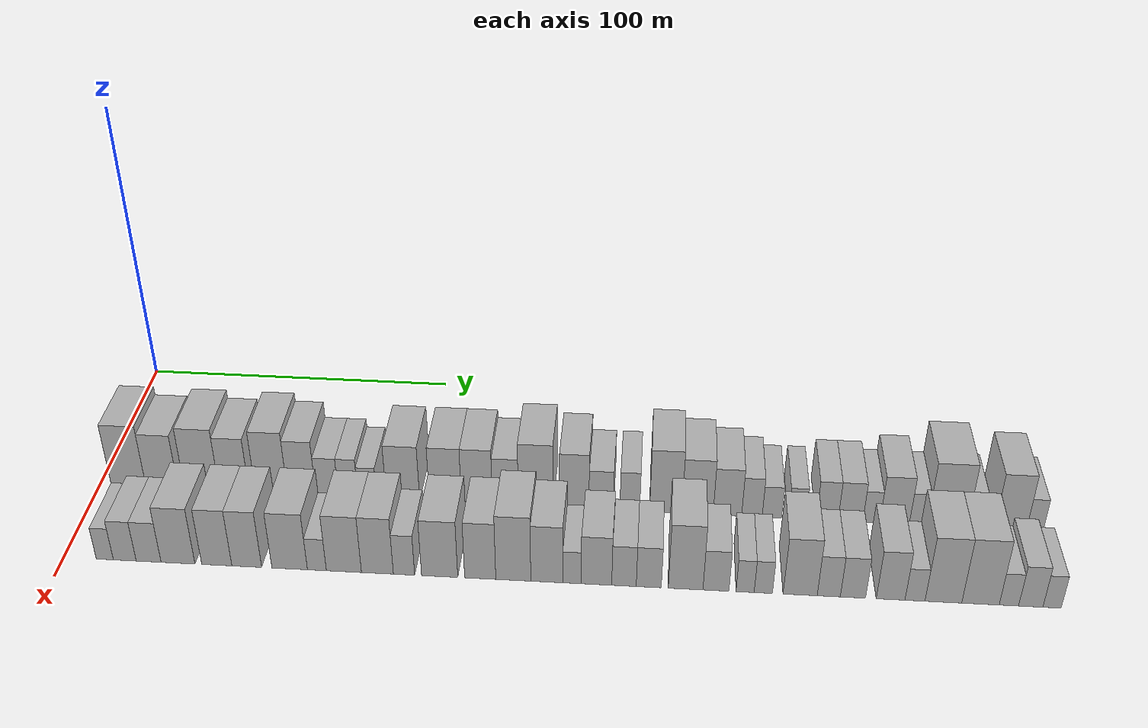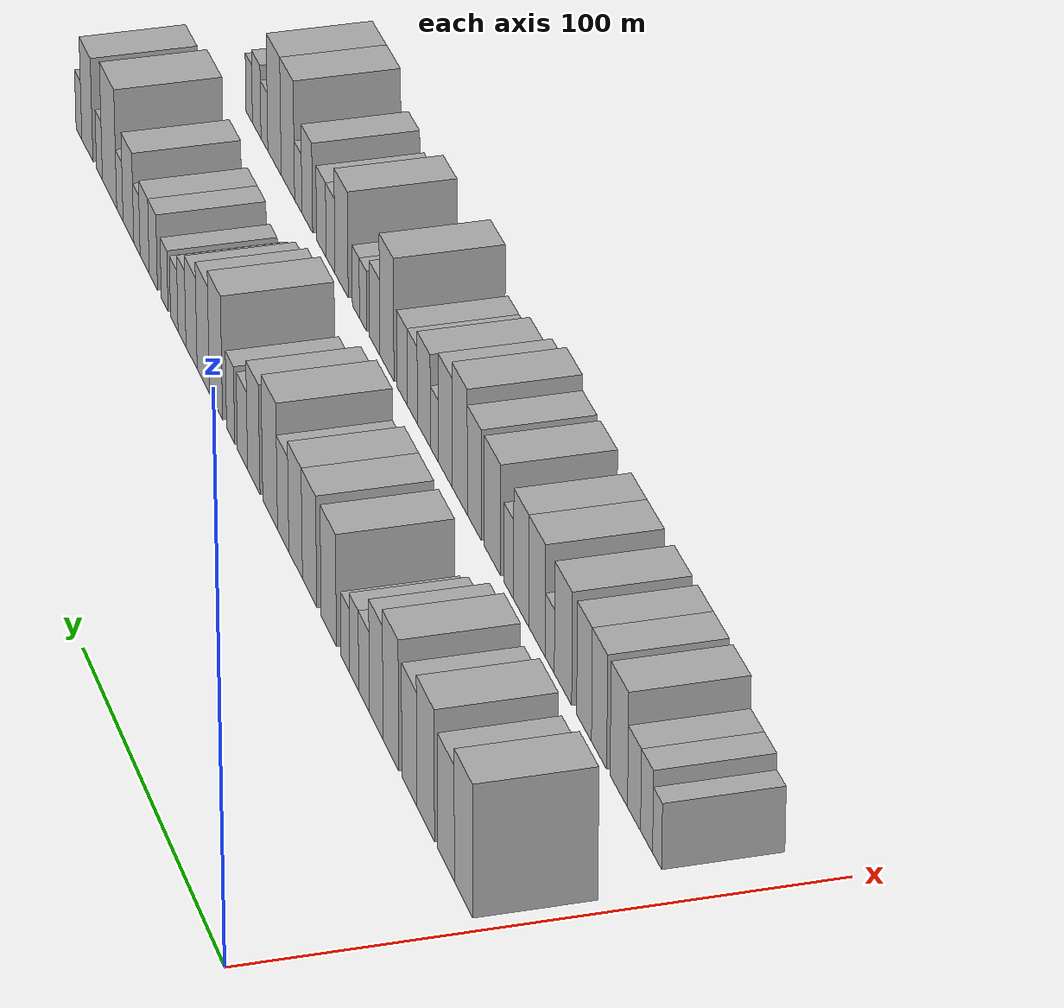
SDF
<sdf version="1.6">
 <world name="default">
  <model name="building_32">
   <static>1</static>
   <pose>50.0000 9.2240 0 0.000000 0.000000 0.000000</pose>
   <link name="link">
    <pose>0 0 12.00 0 0 0</pose>
    <collision name="collision"><geometry><box><size>20.0000 10.9616 24.0000</size></box></geometry></collision>
    <visual name="visual">
     <cast_shadows>0</cast_shadows>
     <geometry><box><size>20.0000 10.9616 24.0000</size></box></geometry>
     <material>
      <script>
       <uri>model://HANNAS_wall/materials/scripts</uri>
       <uri>model://HANNAS_wall/materials/textures</uri>
       <name>vrc/HANNAS_wall</name>
      </script>
     </material>
    </visual>
   </link>
  </model>
  <model name="building_33">
   <static>1</static>
   <pose>50.0000 19.7706 0 0.000000 0.000000 0.000000</pose>
   <link name="link">
    <pose>0 0 10.50 0 0 0</pose>
    <collision name="collision"><geometry><box><size>20.0000 10.1318 21.0000</size></box></geometry></collision>
    <visual name="visual">
     <cast_shadows>0</cast_shadows>
     <geometry><box><size>20.0000 10.1318 21.0000</size></box></geometry>
     <material>
      <script>
       <uri>model://HANNAS_wall/materials/scripts</uri>
       <uri>model://HANNAS_wall/materials/textures</uri>
       <name>vrc/HANNAS_wall</name>
      </script>
     </material>
    </visual>
   </link>
  </model>
  <model name="building_34">
   <static>1</static>
   <pose>50.0000 32.3000 0 0.000000 0.000000 0.000000</pose>
   <link name="link">
    <pose>0 0 12.00 0 0 0</pose>
    <collision name="collision"><geometry><box><size>20.0000 10.9269 24.0000</size></box></geometry></collision>
    <visual name="visual">
     <cast_shadows>0</cast_shadows>
     <geometry><box><size>20.0000 10.9269 24.0000</size></box></geometry>
     <material>
      <script>
       <uri>model://HANNAS_wall/materials/scripts</uri>
       <uri>model://HANNAS_wall/materials/textures</uri>
       <name>vrc/HANNAS_wall</name>
      </script>
     </material>
    </visual>
   </link>
  </model>
  <model name="building_35">
   <static>1</static>
   <pose>50.0000 42.4426 0 0.000000 0.000000 0.000000</pose>
   <link name="link">
    <pose>0 0 10.50 0 0 0</pose>
    <collision name="collision"><geometry><box><size>20.0000 9.3583 21.0000</size></box></geometry></collision>
    <visual name="visual">
     <cast_shadows>0</cast_shadows>
     <geometry><box><size>20.0000 9.3583 21.0000</size></box></geometry>
     <material>
      <script>
       <uri>model://HANNAS_wall/materials/scripts</uri>
       <uri>model://HANNAS_wall/materials/textures</uri>
       <name>vrc/HANNAS_wall</name>
      </script>
     </material>
    </visual>
   </link>
  </model>
  <model name="building_36">
   <static>1</static>
   <pose>50.0000 54.1233 0 0.000000 0.000000 0.000000</pose>
   <link name="link">
    <pose>0 0 12.00 0 0 0</pose>
    <collision name="collision"><geometry><box><size>20.0000 10.0030 24.0000</size></box></geometry></collision>
    <visual name="visual">
     <cast_shadows>0</cast_shadows>
     <geometry><box><size>20.0000 10.0030 24.0000</size></box></geometry>
     <material>
      <script>
       <uri>model://HANNAS_wall/materials/scripts</uri>
       <uri>model://HANNAS_wall/materials/textures</uri>
       <name>vrc/HANNAS_wall</name>
      </script>
     </material>
    </visual>
   </link>
  </model>
  <model name="building_37">
   <static>1</static>
   <pose>50.0000 63.5357 0 0.000000 0.000000 0.000000</pose>
   <link name="link">
    <pose>0 0 10.50 0 0 0</pose>
    <collision name="collision"><geometry><box><size>20.0000 8.8218 21.0000</size></box></geometry></collision>
    <visual name="visual">
     <cast_shadows>0</cast_shadows>
     <geometry><box><size>20.0000 8.8218 21.0000</size></box></geometry>
     <material>
      <script>
       <uri>model://HANNAS_wall/materials/scripts</uri>
       <uri>model://HANNAS_wall/materials/textures</uri>
       <name>vrc/HANNAS_wall</name>
      </script>
     </material>
    </visual>
   </link>
  </model>
  <model name="building_38">
   <static>1</static>
   <pose>50.0000 71.4498 0 0.000000 0.000000 0.000000</pose>
   <link name="link">
    <pose>0 0 7.50 0 0 0</pose>
    <collision name="collision"><geometry><box><size>20.0000 7.0064 15.0000</size></box></geometry></collision>
    <visual name="visual">
     <cast_shadows>0</cast_shadows>
     <geometry><box><size>20.0000 7.0064 15.0000</size></box></geometry>
     <material>
      <script>
       <uri>model://HANNAS_wall/materials/scripts</uri>
       <uri>model://HANNAS_wall/materials/textures</uri>
       <name>vrc/HANNAS_wall</name>
      </script>
     </material>
    </visual>
   </link>
  </model>
  <model name="building_39">
   <static>1</static>
   <pose>50.0000 77.9659 0 0.000000 0.000000 0.000000</pose>
   <link name="link">
    <pose>0 0 7.50 0 0 0</pose>
    <collision name="collision"><geometry><box><size>20.0000 6.0259 15.0000</size></box></geometry></collision>
    <visual name="visual">
     <cast_shadows>0</cast_shadows>
     <geometry><box><size>20.0000 6.0259 15.0000</size></box></geometry>
     <material>
      <script>
       <uri>model://HANNAS_wall/materials/scripts</uri>
       <uri>model://HANNAS_wall/materials/textures</uri>
       <name>vrc/HANNAS_wall</name>
      </script>
     </material>
    </visual>
   </link>
  </model>
  <model name="building_40">
   <static>1</static>
   <pose>50.0000 83.8761 0 0.000000 0.000000 0.000000</pose>
   <link name="link">
    <pose>0 0 6.00 0 0 0</pose>
    <collision name="collision"><geometry><box><size>20.0000 5.7946 12.0000</size></box></geometry></collision>
    <visual name="visual">
     <cast_shadows>0</cast_shadows>
     <geometry><box><size>20.0000 5.7946 12.0000</size></box></geometry>
     <material>
      <script>
       <uri>model://HANNAS_wall/materials/scripts</uri>
       <uri>model://HANNAS_wall/materials/textures</uri>
       <name>vrc/HANNAS_wall</name>
      </script>
     </material>
    </visual>
   </link>
  </model>
  <model name="building_41">
   <static>1</static>
   <pose>50.0000 94.9250 0 0.000000 0.000000 0.000000</pose>
   <link name="link">
    <pose>0 0 10.50 0 0 0</pose>
    <collision name="collision"><geometry><box><size>20.0000 10.3031 21.0000</size></box></geometry></collision>
    <visual name="visual">
     <cast_shadows>0</cast_shadows>
     <geometry><box><size>20.0000 10.3031 21.0000</size></box></geometry>
     <material>
      <script>
       <uri>model://HANNAS_wall/materials/scripts</uri>
       <uri>model://HANNAS_wall/materials/textures</uri>
       <name>vrc/HANNAS_wall</name>
      </script>
     </material>
    </visual>
   </link>
  </model>
  <model name="building_42">
   <static>1</static>
   <pose>50.0000 107.9998 0 0.000000 0.000000 0.000000</pose>
   <link name="link">
    <pose>0 0 10.50 0 0 0</pose>
    <collision name="collision"><geometry><box><size>20.0000 9.8465 21.0000</size></box></geometry></collision>
    <visual name="visual">
     <cast_shadows>0</cast_shadows>
     <geometry><box><size>20.0000 9.8465 21.0000</size></box></geometry>
     <material>
      <script>
       <uri>model://HANNAS_wall/materials/scripts</uri>
       <uri>model://HANNAS_wall/materials/textures</uri>
       <name>vrc/HANNAS_wall</name>
      </script>
     </material>
    </visual>
   </link>
  </model>
  <model name="building_43">
   <static>1</static>
   <pose>50.0000 117.6652 0 0.000000 0.000000 0.000000</pose>
   <link name="link">
    <pose>0 0 10.50 0 0 0</pose>
    <collision name="collision"><geometry><box><size>20.0000 9.4843 21.0000</size></box></geometry></collision>
    <visual name="visual">
     <cast_shadows>0</cast_shadows>
     <geometry><box><size>20.0000 9.4843 21.0000</size></box></geometry>
     <material>
      <script>
       <uri>model://HANNAS_wall/materials/scripts</uri>
       <uri>model://HANNAS_wall/materials/textures</uri>
       <name>vrc/HANNAS_wall</name>
      </script>
     </material>
    </visual>
   </link>
  </model>
  <model name="building_44">
   <static>1</static>
   <pose>50.0000 126.3931 0 0.000000 0.000000 0.000000</pose>
   <link name="link">
    <pose>0 0 9.00 0 0 0</pose>
    <collision name="collision"><geometry><box><size>20.0000 7.9715 18.0000</size></box></geometry></collision>
    <visual name="visual">
     <cast_shadows>0</cast_shadows>
     <geometry><box><size>20.0000 7.9715 18.0000</size></box></geometry>
     <material>
      <script>
       <uri>model://HANNAS_wall/materials/scripts</uri>
       <uri>model://HANNAS_wall/materials/textures</uri>
       <name>vrc/HANNAS_wall</name>
      </script>
     </material>
    </visual>
   </link>
  </model>
  <model name="building_45">
   <static>1</static>
   <pose>50.0000 135.6400 0 0.000000 0.000000 0.000000</pose>
   <link name="link">
    <pose>0 0 12.00 0 0 0</pose>
    <collision name="collision"><geometry><box><size>20.0000 10.5224 24.0000</size></box></geometry></collision>
    <visual name="visual">
     <cast_shadows>0</cast_shadows>
     <geometry><box><size>20.0000 10.5224 24.0000</size></box></geometry>
     <material>
      <script>
       <uri>model://HANNAS_wall/materials/scripts</uri>
       <uri>model://HANNAS_wall/materials/textures</uri>
       <name>vrc/HANNAS_wall</name>
      </script>
     </material>
    </visual>
   </link>
  </model>
  <model name="building_46">
   <static>1</static>
   <pose>50.0000 147.3809 0 0.000000 0.000000 0.000000</pose>
   <link name="link">
    <pose>0 0 10.50 0 0 0</pose>
    <collision name="collision"><geometry><box><size>20.0000 8.9595 21.0000</size></box></geometry></collision>
    <visual name="visual">
     <cast_shadows>0</cast_shadows>
     <geometry><box><size>20.0000 8.9595 21.0000</size></box></geometry>
     <material>
      <script>
       <uri>model://HANNAS_wall/materials/scripts</uri>
       <uri>model://HANNAS_wall/materials/textures</uri>
       <name>vrc/HANNAS_wall</name>
      </script>
     </material>
    </visual>
   </link>
  </model>
  <model name="building_47">
   <static>1</static>
   <pose>50.0000 155.5785 0 0.000000 0.000000 0.000000</pose>
   <link name="link">
    <pose>0 0 7.50 0 0 0</pose>
    <collision name="collision"><geometry><box><size>20.0000 7.4357 15.0000</size></box></geometry></collision>
    <visual name="visual">
     <cast_shadows>0</cast_shadows>
     <geometry><box><size>20.0000 7.4357 15.0000</size></box></geometry>
     <material>
      <script>
       <uri>model://HANNAS_wall/materials/scripts</uri>
       <uri>model://HANNAS_wall/materials/textures</uri>
       <name>vrc/HANNAS_wall</name>
      </script>
     </material>
    </visual>
   </link>
  </model>
  <model name="building_48">
   <static>1</static>
   <pose>50.0000 164.2977 0 0.000000 0.000000 0.000000</pose>
   <link name="link">
    <pose>0 0 7.50 0 0 0</pose>
    <collision name="collision"><geometry><box><size>20.0000 6.0026 15.0000</size></box></geometry></collision>
    <visual name="visual">
     <cast_shadows>0</cast_shadows>
     <geometry><box><size>20.0000 6.0026 15.0000</size></box></geometry>
     <material>
      <script>
       <uri>model://HANNAS_wall/materials/scripts</uri>
       <uri>model://HANNAS_wall/materials/textures</uri>
       <name>vrc/HANNAS_wall</name>
      </script>
     </material>
    </visual>
   </link>
  </model>
  <model name="building_49">
   <static>1</static>
   <pose>50.0000 175.1931 0 0.000000 0.000000 0.000000</pose>
   <link name="link">
    <pose>0 0 12.00 0 0 0</pose>
    <collision name="collision"><geometry><box><size>20.0000 9.7882 24.0000</size></box></geometry></collision>
    <visual name="visual">
     <cast_shadows>0</cast_shadows>
     <geometry><box><size>20.0000 9.7882 24.0000</size></box></geometry>
     <material>
      <script>
       <uri>model://HANNAS_wall/materials/scripts</uri>
       <uri>model://HANNAS_wall/materials/textures</uri>
       <name>vrc/HANNAS_wall</name>
      </script>
     </material>
    </visual>
   </link>
  </model>
  <model name="building_50">
   <static>1</static>
   <pose>50.0000 184.7946 0 0.000000 0.000000 0.000000</pose>
   <link name="link">
    <pose>0 0 10.50 0 0 0</pose>
    <collision name="collision"><geometry><box><size>20.0000 9.4149 21.0000</size></box></geometry></collision>
    <visual name="visual">
     <cast_shadows>0</cast_shadows>
     <geometry><box><size>20.0000 9.4149 21.0000</size></box></geometry>
     <material>
      <script>
       <uri>model://HANNAS_wall/materials/scripts</uri>
       <uri>model://HANNAS_wall/materials/textures</uri>
       <name>vrc/HANNAS_wall</name>
      </script>
     </material>
    </visual>
   </link>
  </model>
  <model name="building_51">
   <static>1</static>
   <pose>50.0000 193.7850 0 0.000000 0.000000 0.000000</pose>
   <link name="link">
    <pose>0 0 9.00 0 0 0</pose>
    <collision name="collision"><geometry><box><size>20.0000 8.5659 18.0000</size></box></geometry></collision>
    <visual name="visual">
     <cast_shadows>0</cast_shadows>
     <geometry><box><size>20.0000 8.5659 18.0000</size></box></geometry>
     <material>
      <script>
       <uri>model://HANNAS_wall/materials/scripts</uri>
       <uri>model://HANNAS_wall/materials/textures</uri>
       <name>vrc/HANNAS_wall</name>
      </script>
     </material>
    </visual>
   </link>
  </model>
  <model name="building_52">
   <static>1</static>
   <pose>50.0000 201.1514 0 0.000000 0.000000 0.000000</pose>
   <link name="link">
    <pose>0 0 7.50 0 0 0</pose>
    <collision name="collision"><geometry><box><size>20.0000 6.1670 15.0000</size></box></geometry></collision>
    <visual name="visual">
     <cast_shadows>0</cast_shadows>
     <geometry><box><size>20.0000 6.1670 15.0000</size></box></geometry>
     <material>
      <script>
       <uri>model://HANNAS_wall/materials/scripts</uri>
       <uri>model://HANNAS_wall/materials/textures</uri>
       <name>vrc/HANNAS_wall</name>
      </script>
     </material>
    </visual>
   </link>
  </model>
  <model name="building_53">
   <static>1</static>
   <pose>50.0000 207.1415 0 0.000000 0.000000 0.000000</pose>
   <link name="link">
    <pose>0 0 6.00 0 0 0</pose>
    <collision name="collision"><geometry><box><size>20.0000 5.8132 12.0000</size></box></geometry></collision>
    <visual name="visual">
     <cast_shadows>0</cast_shadows>
     <geometry><box><size>20.0000 5.8132 12.0000</size></box></geometry>
     <material>
      <script>
       <uri>model://HANNAS_wall/materials/scripts</uri>
       <uri>model://HANNAS_wall/materials/textures</uri>
       <name>vrc/HANNAS_wall</name>
      </script>
     </material>
    </visual>
   </link>
  </model>
  <model name="building_54">
   <static>1</static>
   <pose>50.0000 214.7163 0 0.000000 0.000000 0.000000</pose>
   <link name="link">
    <pose>0 0 6.00 0 0 0</pose>
    <collision name="collision"><geometry><box><size>20.0000 5.3364 12.0000</size></box></geometry></collision>
    <visual name="visual">
     <cast_shadows>0</cast_shadows>
     <geometry><box><size>20.0000 5.3364 12.0000</size></box></geometry>
     <material>
      <script>
       <uri>model://HANNAS_wall/materials/scripts</uri>
       <uri>model://HANNAS_wall/materials/textures</uri>
       <name>vrc/HANNAS_wall</name>
      </script>
     </material>
    </visual>
   </link>
  </model>
  <model name="building_55">
   <static>1</static>
   <pose>50.0000 223.6519 0 0.000000 0.000000 0.000000</pose>
   <link name="link">
    <pose>0 0 7.50 0 0 0</pose>
    <collision name="collision"><geometry><box><size>20.0000 6.5347 15.0000</size></box></geometry></collision>
    <visual name="visual">
     <cast_shadows>0</cast_shadows>
     <geometry><box><size>20.0000 6.5347 15.0000</size></box></geometry>
     <material>
      <script>
       <uri>model://HANNAS_wall/materials/scripts</uri>
       <uri>model://HANNAS_wall/materials/textures</uri>
       <name>vrc/HANNAS_wall</name>
      </script>
     </material>
    </visual>
   </link>
  </model>
  <model name="building_56">
   <static>1</static>
   <pose>50.0000 230.6128 0 0.000000 0.000000 0.000000</pose>
   <link name="link">
    <pose>0 0 7.50 0 0 0</pose>
    <collision name="collision"><geometry><box><size>20.0000 7.3871 15.0000</size></box></geometry></collision>
    <visual name="visual">
     <cast_shadows>0</cast_shadows>
     <geometry><box><size>20.0000 7.3871 15.0000</size></box></geometry>
     <material>
      <script>
       <uri>model://HANNAS_wall/materials/scripts</uri>
       <uri>model://HANNAS_wall/materials/textures</uri>
       <name>vrc/HANNAS_wall</name>
      </script>
     </material>
    </visual>
   </link>
  </model>
  <model name="building_57">
   <static>1</static>
   <pose>50.0000 236.8439 0 0.000000 0.000000 0.000000</pose>
   <link name="link">
    <pose>0 0 6.00 0 0 0</pose>
    <collision name="collision"><geometry><box><size>20.0000 5.0752 12.0000</size></box></geometry></collision>
    <visual name="visual">
     <cast_shadows>0</cast_shadows>
     <geometry><box><size>20.0000 5.0752 12.0000</size></box></geometry>
     <material>
      <script>
       <uri>model://HANNAS_wall/materials/scripts</uri>
       <uri>model://HANNAS_wall/materials/textures</uri>
       <name>vrc/HANNAS_wall</name>
      </script>
     </material>
    </visual>
   </link>
  </model>
  <model name="building_58">
   <static>1</static>
   <pose>50.0000 243.7710 0 0.000000 0.000000 0.000000</pose>
   <link name="link">
    <pose>0 0 9.00 0 0 0</pose>
    <collision name="collision"><geometry><box><size>20.0000 8.7789 18.0000</size></box></geometry></collision>
    <visual name="visual">
     <cast_shadows>0</cast_shadows>
     <geometry><box><size>20.0000 8.7789 18.0000</size></box></geometry>
     <material>
      <script>
       <uri>model://HANNAS_wall/materials/scripts</uri>
       <uri>model://HANNAS_wall/materials/textures</uri>
       <name>vrc/HANNAS_wall</name>
      </script>
     </material>
    </visual>
   </link>
  </model>
  <model name="building_59">
   <static>1</static>
   <pose>50.0000 250.7922 0 0.000000 0.000000 0.000000</pose>
   <link name="link">
    <pose>0 0 6.00 0 0 0</pose>
    <collision name="collision"><geometry><box><size>20.0000 5.2635 12.0000</size></box></geometry></collision>
    <visual name="visual">
     <cast_shadows>0</cast_shadows>
     <geometry><box><size>20.0000 5.2635 12.0000</size></box></geometry>
     <material>
      <script>
       <uri>model://HANNAS_wall/materials/scripts</uri>
       <uri>model://HANNAS_wall/materials/textures</uri>
       <name>vrc/HANNAS_wall</name>
      </script>
     </material>
    </visual>
   </link>
  </model>
  <model name="building_60">
   <static>1</static>
   <pose>50.0000 259.3824 0 0.000000 0.000000 0.000000</pose>
   <link name="link">
    <pose>0 0 12.00 0 0 0</pose>
    <collision name="collision"><geometry><box><size>20.0000 11.9169 24.0000</size></box></geometry></collision>
    <visual name="visual">
     <cast_shadows>0</cast_shadows>
     <geometry><box><size>20.0000 11.9169 24.0000</size></box></geometry>
     <material>
      <script>
       <uri>model://HANNAS_wall/materials/scripts</uri>
       <uri>model://HANNAS_wall/materials/textures</uri>
       <name>vrc/HANNAS_wall</name>
      </script>
     </material>
    </visual>
   </link>
  </model>
  <model name="building_61">
   <static>1</static>
   <pose>50.0000 267.8239 0 0.000000 0.000000 0.000000</pose>
   <link name="link">
    <pose>0 0 6.00 0 0 0</pose>
    <collision name="collision"><geometry><box><size>20.0000 4.9660 12.0000</size></box></geometry></collision>
    <visual name="visual">
     <cast_shadows>0</cast_shadows>
     <geometry><box><size>20.0000 4.9660 12.0000</size></box></geometry>
     <material>
      <script>
       <uri>model://HANNAS_wall/materials/scripts</uri>
       <uri>model://HANNAS_wall/materials/textures</uri>
       <name>vrc/HANNAS_wall</name>
      </script>
     </material>
    </visual>
   </link>
  </model>
  <model name="building_62">
   <static>1</static>
   <pose>50.0000 278.0380 0 0.000000 0.000000 0.000000</pose>
   <link name="link">
    <pose>0 0 10.50 0 0 0</pose>
    <collision name="collision"><geometry><box><size>20.0000 9.4623 21.0000</size></box></geometry></collision>
    <visual name="visual">
     <cast_shadows>0</cast_shadows>
     <geometry><box><size>20.0000 9.4623 21.0000</size></box></geometry>
     <material>
      <script>
       <uri>model://HANNAS_wall/materials/scripts</uri>
       <uri>model://HANNAS_wall/materials/textures</uri>
       <name>vrc/HANNAS_wall</name>
      </script>
     </material>
    </visual>
   </link>
  </model>
  <model name="building_63">
   <static>1</static>
   <pose>50.0000 285.2360 0 0.000000 0.000000 0.000000</pose>
   <link name="link">
    <pose>0 0 6.00 0 0 0</pose>
    <collision name="collision"><geometry><box><size>20.0000 4.9337 12.0000</size></box></geometry></collision>
    <visual name="visual">
     <cast_shadows>0</cast_shadows>
     <geometry><box><size>20.0000 4.9337 12.0000</size></box></geometry>
     <material>
      <script>
       <uri>model://HANNAS_wall/materials/scripts</uri>
       <uri>model://HANNAS_wall/materials/textures</uri>
       <name>vrc/HANNAS_wall</name>
      </script>
     </material>
    </visual>
   </link>
  </model>
  <model name="building_98">
   <static>1</static>
   <pose>82.0000 12.2922 0 0.000000 0.000000 0.000000</pose>
   <link name="link">
    <pose>0 0 6.00 0 0 0</pose>
    <collision name="collision"><geometry><box><size>20.0000 5.0802 12.0000</size></box></geometry></collision>
    <visual name="visual">
     <cast_shadows>0</cast_shadows>
     <geometry><box><size>20.0000 5.0802 12.0000</size></box></geometry>
     <material>
      <script>
       <uri>model://HANNAS_wall/materials/scripts</uri>
       <uri>model://HANNAS_wall/materials/textures</uri>
       <name>vrc/HANNAS_wall</name>
      </script>
     </material>
    </visual>
   </link>
  </model>
  <model name="building_99">
   <static>1</static>
   <pose>82.0000 18.2237 0 0.000000 0.000000 0.000000</pose>
   <link name="link">
    <pose>0 0 7.50 0 0 0</pose>
    <collision name="collision"><geometry><box><size>20.0000 6.7827 15.0000</size></box></geometry></collision>
    <visual name="visual">
     <cast_shadows>0</cast_shadows>
     <geometry><box><size>20.0000 6.7827 15.0000</size></box></geometry>
     <material>
      <script>
       <uri>model://HANNAS_wall/materials/scripts</uri>
       <uri>model://HANNAS_wall/materials/textures</uri>
       <name>vrc/HANNAS_wall</name>
      </script>
     </material>
    </visual>
   </link>
  </model>
  <model name="building_100">
   <static>1</static>
   <pose>82.0000 25.3104 0 0.000000 0.000000 0.000000</pose>
   <link name="link">
    <pose>0 0 7.50 0 0 0</pose>
    <collision name="collision"><geometry><box><size>20.0000 7.3907 15.0000</size></box></geometry></collision>
    <visual name="visual">
     <cast_shadows>0</cast_shadows>
     <geometry><box><size>20.0000 7.3907 15.0000</size></box></geometry>
     <material>
      <script>
       <uri>model://HANNAS_wall/materials/scripts</uri>
       <uri>model://HANNAS_wall/materials/textures</uri>
       <name>vrc/HANNAS_wall</name>
      </script>
     </material>
    </visual>
   </link>
  </model>
  <model name="building_101">
   <static>1</static>
   <pose>82.0000 34.0197 0 0.000000 0.000000 0.000000</pose>
   <link name="link">
    <pose>0 0 10.50 0 0 0</pose>
    <collision name="collision"><geometry><box><size>20.0000 10.0278 21.0000</size></box></geometry></collision>
    <visual name="visual">
     <cast_shadows>0</cast_shadows>
     <geometry><box><size>20.0000 10.0278 21.0000</size></box></geometry>
     <material>
      <script>
       <uri>model://HANNAS_wall/materials/scripts</uri>
       <uri>model://HANNAS_wall/materials/textures</uri>
       <name>vrc/HANNAS_wall</name>
      </script>
     </material>
    </visual>
   </link>
  </model>
  <model name="building_102">
   <static>1</static>
   <pose>82.0000 45.4800 0 0.000000 0.000000 0.000000</pose>
   <link name="link">
    <pose>0 0 10.50 0 0 0</pose>
    <collision name="collision"><geometry><box><size>20.0000 8.8928 21.0000</size></box></geometry></collision>
    <visual name="visual">
     <cast_shadows>0</cast_shadows>
     <geometry><box><size>20.0000 8.8928 21.0000</size></box></geometry>
     <material>
      <script>
       <uri>model://HANNAS_wall/materials/scripts</uri>
       <uri>model://HANNAS_wall/materials/textures</uri>
       <name>vrc/HANNAS_wall</name>
      </script>
     </material>
    </visual>
   </link>
  </model>
  <model name="building_103">
   <static>1</static>
   <pose>82.0000 54.3152 0 0.000000 0.000000 0.000000</pose>
   <link name="link">
    <pose>0 0 10.50 0 0 0</pose>
    <collision name="collision"><geometry><box><size>20.0000 8.7777 21.0000</size></box></geometry></collision>
    <visual name="visual">
     <cast_shadows>0</cast_shadows>
     <geometry><box><size>20.0000 8.7777 21.0000</size></box></geometry>
     <material>
      <script>
       <uri>model://HANNAS_wall/materials/scripts</uri>
       <uri>model://HANNAS_wall/materials/textures</uri>
       <name>vrc/HANNAS_wall</name>
      </script>
     </material>
    </visual>
   </link>
  </model>
  <model name="building_104">
   <static>1</static>
   <pose>82.0000 66.9151 0 0.000000 0.000000 0.000000</pose>
   <link name="link">
    <pose>0 0 10.50 0 0 0</pose>
    <collision name="collision"><geometry><box><size>20.0000 10.4221 21.0000</size></box></geometry></collision>
    <visual name="visual">
     <cast_shadows>0</cast_shadows>
     <geometry><box><size>20.0000 10.4221 21.0000</size></box></geometry>
     <material>
      <script>
       <uri>model://HANNAS_wall/materials/scripts</uri>
       <uri>model://HANNAS_wall/materials/textures</uri>
       <name>vrc/HANNAS_wall</name>
      </script>
     </material>
    </visual>
   </link>
  </model>
  <model name="building_105">
   <static>1</static>
   <pose>82.0000 74.8989 0 0.000000 0.000000 0.000000</pose>
   <link name="link">
    <pose>0 0 6.00 0 0 0</pose>
    <collision name="collision"><geometry><box><size>20.0000 5.5454 12.0000</size></box></geometry></collision>
    <visual name="visual">
     <cast_shadows>0</cast_shadows>
     <geometry><box><size>20.0000 5.5454 12.0000</size></box></geometry>
     <material>
      <script>
       <uri>model://HANNAS_wall/materials/scripts</uri>
       <uri>model://HANNAS_wall/materials/textures</uri>
       <name>vrc/HANNAS_wall</name>
      </script>
     </material>
    </visual>
   </link>
  </model>
  <model name="building_106">
   <static>1</static>
   <pose>82.0000 82.7951 0 0.000000 0.000000 0.000000</pose>
   <link name="link">
    <pose>0 0 10.50 0 0 0</pose>
    <collision name="collision"><geometry><box><size>20.0000 10.2469 21.0000</size></box></geometry></collision>
    <visual name="visual">
     <cast_shadows>0</cast_shadows>
     <geometry><box><size>20.0000 10.2469 21.0000</size></box></geometry>
     <material>
      <script>
       <uri>model://HANNAS_wall/materials/scripts</uri>
       <uri>model://HANNAS_wall/materials/textures</uri>
       <name>vrc/HANNAS_wall</name>
      </script>
     </material>
    </visual>
   </link>
  </model>
  <model name="building_107">
   <static>1</static>
   <pose>82.0000 92.5687 0 0.000000 0.000000 0.000000</pose>
   <link name="link">
    <pose>0 0 10.50 0 0 0</pose>
    <collision name="collision"><geometry><box><size>20.0000 9.3003 21.0000</size></box></geometry></collision>
    <visual name="visual">
     <cast_shadows>0</cast_shadows>
     <geometry><box><size>20.0000 9.3003 21.0000</size></box></geometry>
     <material>
      <script>
       <uri>model://HANNAS_wall/materials/scripts</uri>
       <uri>model://HANNAS_wall/materials/textures</uri>
       <name>vrc/HANNAS_wall</name>
      </script>
     </material>
    </visual>
   </link>
  </model>
  <model name="building_108">
   <static>1</static>
   <pose>82.0000 100.3097 0 0.000000 0.000000 0.000000</pose>
   <link name="link">
    <pose>0 0 7.50 0 0 0</pose>
    <collision name="collision"><geometry><box><size>20.0000 6.1818 15.0000</size></box></geometry></collision>
    <visual name="visual">
     <cast_shadows>0</cast_shadows>
     <geometry><box><size>20.0000 6.1818 15.0000</size></box></geometry>
     <material>
      <script>
       <uri>model://HANNAS_wall/materials/scripts</uri>
       <uri>model://HANNAS_wall/materials/textures</uri>
       <name>vrc/HANNAS_wall</name>
      </script>
     </material>
    </visual>
   </link>
  </model>
  <model name="building_109">
   <static>1</static>
   <pose>82.0000 110.6427 0 0.000000 0.000000 0.000000</pose>
   <link name="link">
    <pose>0 0 10.50 0 0 0</pose>
    <collision name="collision"><geometry><box><size>20.0000 10.4842 21.0000</size></box></geometry></collision>
    <visual name="visual">
     <cast_shadows>0</cast_shadows>
     <geometry><box><size>20.0000 10.4842 21.0000</size></box></geometry>
     <material>
      <script>
       <uri>model://HANNAS_wall/materials/scripts</uri>
       <uri>model://HANNAS_wall/materials/textures</uri>
       <name>vrc/HANNAS_wall</name>
      </script>
     </material>
    </visual>
   </link>
  </model>
  <model name="building_110">
   <static>1</static>
   <pose>82.0000 122.3761 0 0.000000 0.000000 0.000000</pose>
   <link name="link">
    <pose>0 0 10.50 0 0 0</pose>
    <collision name="collision"><geometry><box><size>20.0000 8.9828 21.0000</size></box></geometry></collision>
    <visual name="visual">
     <cast_shadows>0</cast_shadows>
     <geometry><box><size>20.0000 8.9828 21.0000</size></box></geometry>
     <material>
      <script>
       <uri>model://HANNAS_wall/materials/scripts</uri>
       <uri>model://HANNAS_wall/materials/textures</uri>
       <name>vrc/HANNAS_wall</name>
      </script>
     </material>
    </visual>
   </link>
  </model>
  <model name="building_111">
   <static>1</static>
   <pose>82.0000 131.9106 0 0.000000 0.000000 0.000000</pose>
   <link name="link">
    <pose>0 0 12.00 0 0 0</pose>
    <collision name="collision"><geometry><box><size>20.0000 10.0862 24.0000</size></box></geometry></collision>
    <visual name="visual">
     <cast_shadows>0</cast_shadows>
     <geometry><box><size>20.0000 10.0862 24.0000</size></box></geometry>
     <material>
      <script>
       <uri>model://HANNAS_wall/materials/scripts</uri>
       <uri>model://HANNAS_wall/materials/textures</uri>
       <name>vrc/HANNAS_wall</name>
      </script>
     </material>
    </visual>
   </link>
  </model>
  <model name="building_112">
   <static>1</static>
   <pose>82.0000 141.5262 0 0.000000 0.000000 0.000000</pose>
   <link name="link">
    <pose>0 0 10.50 0 0 0</pose>
    <collision name="collision"><geometry><box><size>20.0000 9.1451 21.0000</size></box></geometry></collision>
    <visual name="visual">
     <cast_shadows>0</cast_shadows>
     <geometry><box><size>20.0000 9.1451 21.0000</size></box></geometry>
     <material>
      <script>
       <uri>model://HANNAS_wall/materials/scripts</uri>
       <uri>model://HANNAS_wall/materials/textures</uri>
       <name>vrc/HANNAS_wall</name>
      </script>
     </material>
    </visual>
   </link>
  </model>
  <model name="building_113">
   <static>1</static>
   <pose>82.0000 148.7313 0 0.000000 0.000000 0.000000</pose>
   <link name="link">
    <pose>0 0 6.00 0 0 0</pose>
    <collision name="collision"><geometry><box><size>20.0000 5.2650 12.0000</size></box></geometry></collision>
    <visual name="visual">
     <cast_shadows>0</cast_shadows>
     <geometry><box><size>20.0000 5.2650 12.0000</size></box></geometry>
     <material>
      <script>
       <uri>model://HANNAS_wall/materials/scripts</uri>
       <uri>model://HANNAS_wall/materials/textures</uri>
       <name>vrc/HANNAS_wall</name>
      </script>
     </material>
    </visual>
   </link>
  </model>
  <model name="building_114">
   <static>1</static>
   <pose>82.0000 155.7561 0 0.000000 0.000000 0.000000</pose>
   <link name="link">
    <pose>0 0 9.00 0 0 0</pose>
    <collision name="collision"><geometry><box><size>20.0000 8.7845 18.0000</size></box></geometry></collision>
    <visual name="visual">
     <cast_shadows>0</cast_shadows>
     <geometry><box><size>20.0000 8.7845 18.0000</size></box></geometry>
     <material>
      <script>
       <uri>model://HANNAS_wall/materials/scripts</uri>
       <uri>model://HANNAS_wall/materials/textures</uri>
       <name>vrc/HANNAS_wall</name>
      </script>
     </material>
    </visual>
   </link>
  </model>
  <model name="building_115">
   <static>1</static>
   <pose>82.0000 163.6476 0 0.000000 0.000000 0.000000</pose>
   <link name="link">
    <pose>0 0 7.50 0 0 0</pose>
    <collision name="collision"><geometry><box><size>20.0000 6.9985 15.0000</size></box></geometry></collision>
    <visual name="visual">
     <cast_shadows>0</cast_shadows>
     <geometry><box><size>20.0000 6.9985 15.0000</size></box></geometry>
     <material>
      <script>
       <uri>model://HANNAS_wall/materials/scripts</uri>
       <uri>model://HANNAS_wall/materials/textures</uri>
       <name>vrc/HANNAS_wall</name>
      </script>
     </material>
    </visual>
   </link>
  </model>
  <model name="building_116">
   <static>1</static>
   <pose>82.0000 170.7134 0 0.000000 0.000000 0.000000</pose>
   <link name="link">
    <pose>0 0 7.50 0 0 0</pose>
    <collision name="collision"><geometry><box><size>20.0000 7.1330 15.0000</size></box></geometry></collision>
    <visual name="visual">
     <cast_shadows>0</cast_shadows>
     <geometry><box><size>20.0000 7.1330 15.0000</size></box></geometry>
     <material>
      <script>
       <uri>model://HANNAS_wall/materials/scripts</uri>
       <uri>model://HANNAS_wall/materials/textures</uri>
       <name>vrc/HANNAS_wall</name>
      </script>
     </material>
    </visual>
   </link>
  </model>
  <model name="building_117">
   <static>1</static>
   <pose>82.0000 181.2088 0 0.000000 0.000000 0.000000</pose>
   <link name="link">
    <pose>0 0 12.00 0 0 0</pose>
    <collision name="collision"><geometry><box><size>20.0000 9.8578 24.0000</size></box></geometry></collision>
    <visual name="visual">
     <cast_shadows>0</cast_shadows>
     <geometry><box><size>20.0000 9.8578 24.0000</size></box></geometry>
     <material>
      <script>
       <uri>model://HANNAS_wall/materials/scripts</uri>
       <uri>model://HANNAS_wall/materials/textures</uri>
       <name>vrc/HANNAS_wall</name>
      </script>
     </material>
    </visual>
   </link>
  </model>
  <model name="building_118">
   <static>1</static>
   <pose>82.0000 189.8162 0 0.000000 0.000000 0.000000</pose>
   <link name="link">
    <pose>0 0 7.50 0 0 0</pose>
    <collision name="collision"><geometry><box><size>20.0000 7.3570 15.0000</size></box></geometry></collision>
    <visual name="visual">
     <cast_shadows>0</cast_shadows>
     <geometry><box><size>20.0000 7.3570 15.0000</size></box></geometry>
     <material>
      <script>
       <uri>model://HANNAS_wall/materials/scripts</uri>
       <uri>model://HANNAS_wall/materials/textures</uri>
       <name>vrc/HANNAS_wall</name>
      </script>
     </material>
    </visual>
   </link>
  </model>
  <model name="building_119">
   <static>1</static>
   <pose>82.0000 198.0587 0 0.000000 0.000000 0.000000</pose>
   <link name="link">
    <pose>0 0 6.00 0 0 0</pose>
    <collision name="collision"><geometry><box><size>20.0000 5.1281 12.0000</size></box></geometry></collision>
    <visual name="visual">
     <cast_shadows>0</cast_shadows>
     <geometry><box><size>20.0000 5.1281 12.0000</size></box></geometry>
     <material>
      <script>
       <uri>model://HANNAS_wall/materials/scripts</uri>
       <uri>model://HANNAS_wall/materials/textures</uri>
       <name>vrc/HANNAS_wall</name>
      </script>
     </material>
    </visual>
   </link>
  </model>
  <model name="building_120">
   <static>1</static>
   <pose>82.0000 203.1987 0 0.000000 0.000000 0.000000</pose>
   <link name="link">
    <pose>0 0 6.00 0 0 0</pose>
    <collision name="collision"><geometry><box><size>20.0000 5.1518 12.0000</size></box></geometry></collision>
    <visual name="visual">
     <cast_shadows>0</cast_shadows>
     <geometry><box><size>20.0000 5.1518 12.0000</size></box></geometry>
     <material>
      <script>
       <uri>model://HANNAS_wall/materials/scripts</uri>
       <uri>model://HANNAS_wall/materials/textures</uri>
       <name>vrc/HANNAS_wall</name>
      </script>
     </material>
    </visual>
   </link>
  </model>
  <model name="building_121">
   <static>1</static>
   <pose>82.0000 213.5785 0 0.000000 0.000000 0.000000</pose>
   <link name="link">
    <pose>0 0 10.50 0 0 0</pose>
    <collision name="collision"><geometry><box><size>20.0000 9.6078 21.0000</size></box></geometry></collision>
    <visual name="visual">
     <cast_shadows>0</cast_shadows>
     <geometry><box><size>20.0000 9.6078 21.0000</size></box></geometry>
     <material>
      <script>
       <uri>model://HANNAS_wall/materials/scripts</uri>
       <uri>model://HANNAS_wall/materials/textures</uri>
       <name>vrc/HANNAS_wall</name>
      </script>
     </material>
    </visual>
   </link>
  </model>
  <model name="building_122">
   <static>1</static>
   <pose>82.0000 221.6331 0 0.000000 0.000000 0.000000</pose>
   <link name="link">
    <pose>0 0 7.50 0 0 0</pose>
    <collision name="collision"><geometry><box><size>20.0000 6.5015 15.0000</size></box></geometry></collision>
    <visual name="visual">
     <cast_shadows>0</cast_shadows>
     <geometry><box><size>20.0000 6.5015 15.0000</size></box></geometry>
     <material>
      <script>
       <uri>model://HANNAS_wall/materials/scripts</uri>
       <uri>model://HANNAS_wall/materials/textures</uri>
       <name>vrc/HANNAS_wall</name>
      </script>
     </material>
    </visual>
   </link>
  </model>
  <model name="building_123">
   <static>1</static>
   <pose>82.0000 228.4155 0 0.000000 0.000000 0.000000</pose>
   <link name="link">
    <pose>0 0 7.50 0 0 0</pose>
    <collision name="collision"><geometry><box><size>20.0000 7.0634 15.0000</size></box></geometry></collision>
    <visual name="visual">
     <cast_shadows>0</cast_shadows>
     <geometry><box><size>20.0000 7.0634 15.0000</size></box></geometry>
     <material>
      <script>
       <uri>model://HANNAS_wall/materials/scripts</uri>
       <uri>model://HANNAS_wall/materials/textures</uri>
       <name>vrc/HANNAS_wall</name>
      </script>
     </material>
    </visual>
   </link>
  </model>
  <model name="building_124">
   <static>1</static>
   <pose>82.0000 238.9627 0 0.000000 0.000000 0.000000</pose>
   <link name="link">
    <pose>0 0 9.00 0 0 0</pose>
    <collision name="collision"><geometry><box><size>20.0000 8.0309 18.0000</size></box></geometry></collision>
    <visual name="visual">
     <cast_shadows>0</cast_shadows>
     <geometry><box><size>20.0000 8.0309 18.0000</size></box></geometry>
     <material>
      <script>
       <uri>model://HANNAS_wall/materials/scripts</uri>
       <uri>model://HANNAS_wall/materials/textures</uri>
       <name>vrc/HANNAS_wall</name>
      </script>
     </material>
    </visual>
   </link>
  </model>
  <model name="building_125">
   <static>1</static>
   <pose>82.0000 245.7702 0 0.000000 0.000000 0.000000</pose>
   <link name="link">
    <pose>0 0 6.00 0 0 0</pose>
    <collision name="collision"><geometry><box><size>20.0000 5.5842 12.0000</size></box></geometry></collision>
    <visual name="visual">
     <cast_shadows>0</cast_shadows>
     <geometry><box><size>20.0000 5.5842 12.0000</size></box></geometry>
     <material>
      <script>
       <uri>model://HANNAS_wall/materials/scripts</uri>
       <uri>model://HANNAS_wall/materials/textures</uri>
       <name>vrc/HANNAS_wall</name>
      </script>
     </material>
    </visual>
   </link>
  </model>
  <model name="building_126">
   <static>1</static>
   <pose>82.0000 253.6776 0 0.000000 0.000000 0.000000</pose>
   <link name="link">
    <pose>0 0 12.00 0 0 0</pose>
    <collision name="collision"><geometry><box><size>20.0000 10.2306 24.0000</size></box></geometry></collision>
    <visual name="visual">
     <cast_shadows>0</cast_shadows>
     <geometry><box><size>20.0000 10.2306 24.0000</size></box></geometry>
     <material>
      <script>
       <uri>model://HANNAS_wall/materials/scripts</uri>
       <uri>model://HANNAS_wall/materials/textures</uri>
       <name>vrc/HANNAS_wall</name>
      </script>
     </material>
    </visual>
   </link>
  </model>
  <model name="building_127">
   <static>1</static>
   <pose>82.0000 263.9941 0 0.000000 0.000000 0.000000</pose>
   <link name="link">
    <pose>0 0 12.00 0 0 0</pose>
    <collision name="collision"><geometry><box><size>20.0000 10.4025 24.0000</size></box></geometry></collision>
    <visual name="visual">
     <cast_shadows>0</cast_shadows>
     <geometry><box><size>20.0000 10.4025 24.0000</size></box></geometry>
     <material>
      <script>
       <uri>model://HANNAS_wall/materials/scripts</uri>
       <uri>model://HANNAS_wall/materials/textures</uri>
       <name>vrc/HANNAS_wall</name>
      </script>
     </material>
    </visual>
   </link>
  </model>
  <model name="building_128">
   <static>1</static>
   <pose>82.0000 271.8763 0 0.000000 0.000000 0.000000</pose>
   <link name="link">
    <pose>0 0 6.00 0 0 0</pose>
    <collision name="collision"><geometry><box><size>20.0000 5.3619 12.0000</size></box></geometry></collision>
    <visual name="visual">
     <cast_shadows>0</cast_shadows>
     <geometry><box><size>20.0000 5.3619 12.0000</size></box></geometry>
     <material>
      <script>
       <uri>model://HANNAS_wall/materials/scripts</uri>
       <uri>model://HANNAS_wall/materials/textures</uri>
       <name>vrc/HANNAS_wall</name>
      </script>
     </material>
    </visual>
   </link>
  </model>
  <model name="building_129">
   <static>1</static>
   <pose>82.0000 277.9177 0 0.000000 0.000000 0.000000</pose>
   <link name="link">
    <pose>0 0 7.50 0 0 0</pose>
    <collision name="collision"><geometry><box><size>20.0000 6.7208 15.0000</size></box></geometry></collision>
    <visual name="visual">
     <cast_shadows>0</cast_shadows>
     <geometry><box><size>20.0000 6.7208 15.0000</size></box></geometry>
     <material>
      <script>
       <uri>model://HANNAS_wall/materials/scripts</uri>
       <uri>model://HANNAS_wall/materials/textures</uri>
       <name>vrc/HANNAS_wall</name>
      </script>
     </material>
    </visual>
   </link>
  </model>
  <model name="building_130">
   <static>1</static>
   <pose>82.0000 283.7989 0 0.000000 0.000000 0.000000</pose>
   <link name="link">
    <pose>0 0 6.00 0 0 0</pose>
    <collision name="collision"><geometry><box><size>20.0000 5.0415 12.0000</size></box></geometry></collision>
    <visual name="visual">
     <cast_shadows>0</cast_shadows>
     <geometry><box><size>20.0000 5.0415 12.0000</size></box></geometry>
     <material>
      <script>
       <uri>model://HANNAS_wall/materials/scripts</uri>
       <uri>model://HANNAS_wall/materials/textures</uri>
       <name>vrc/HANNAS_wall</name>
      </script>
     </material>
    </visual>
   </link>
  </model>
 </world>
</sdf>
